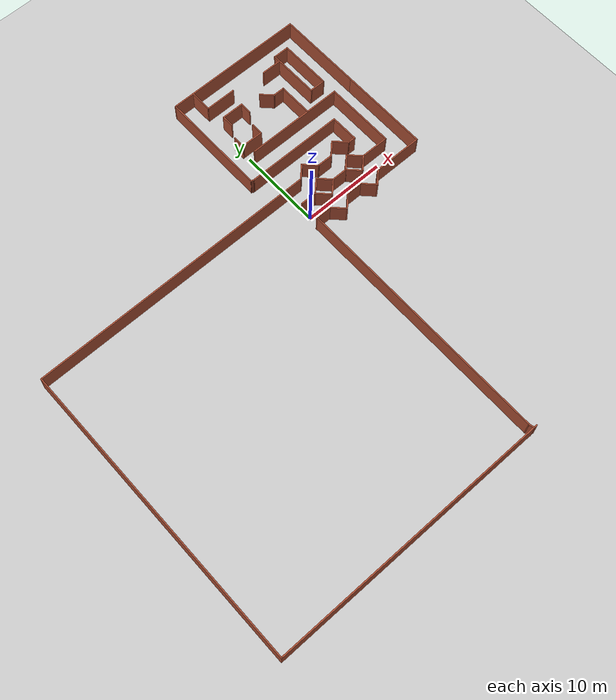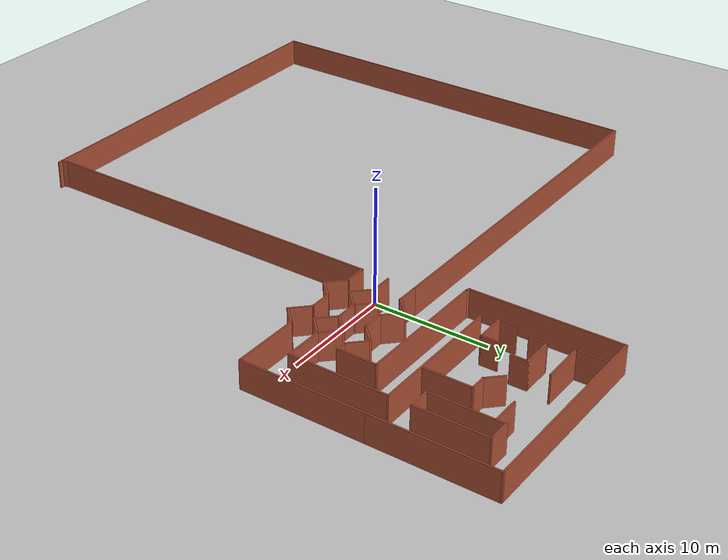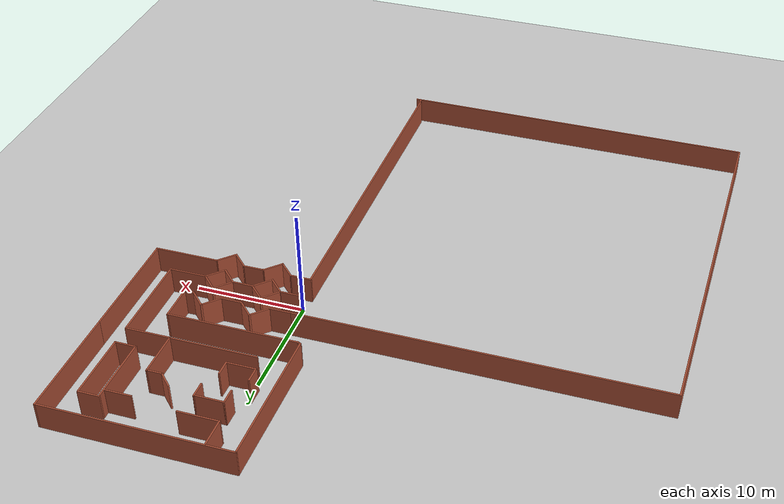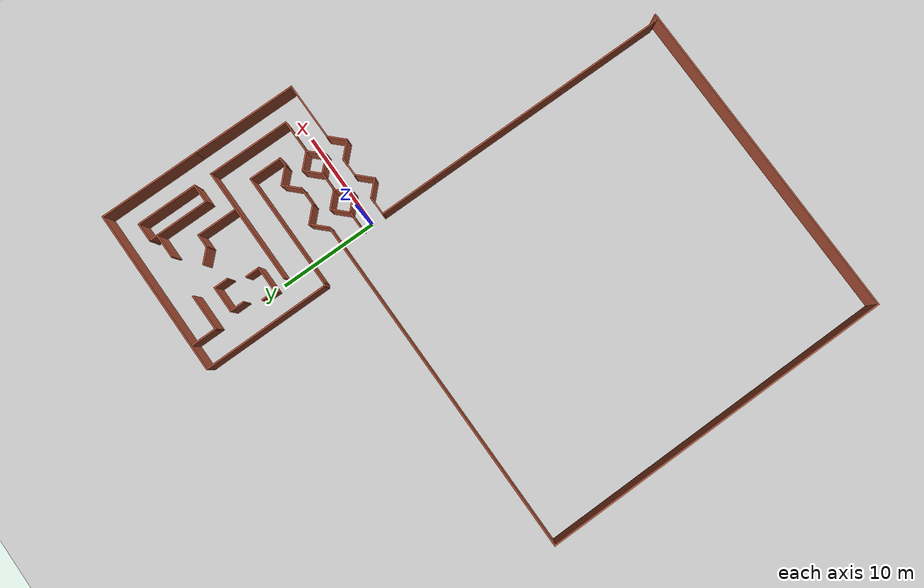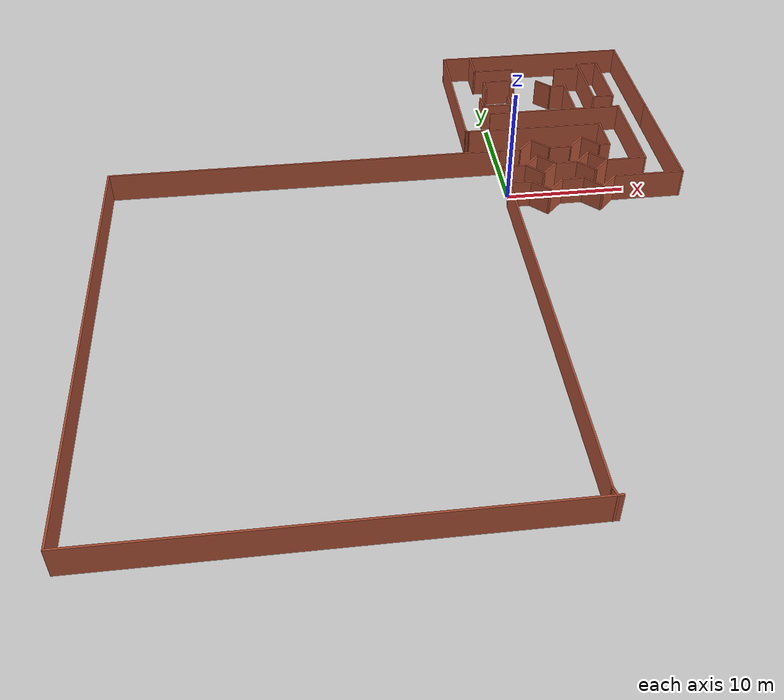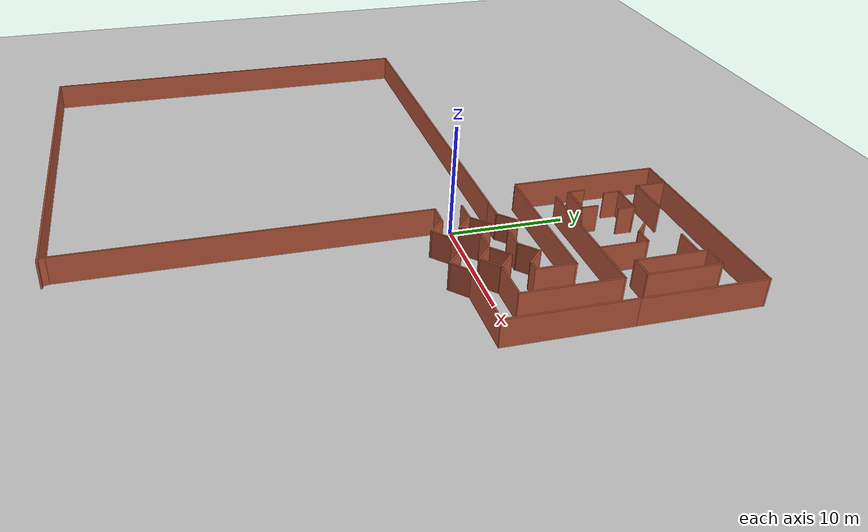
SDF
<sdf version="1.6">
 <world name="default">
  <light name="sun" type="directional">
   <pose>0 0 10 0 -0 0</pose>
   <diffuse>0.8 0.8 0.8 1</diffuse>
   <specular>0.2 0.2 0.2 1</specular>
   <attenuation>
    <range>1000</range>
    <constant>0.9</constant>
    <linear>0.01</linear>
    <quadratic>0.001</quadratic>
   </attenuation>
   <direction>-0.5 0.1 -0.9</direction>
  </light>
  <model name="ground_plane">
   <static>1</static>
   <link name="link">
    <collision name="collision">
     <geometry><plane><normal>0 0 1</normal><size>100 100</size></plane></geometry>
     <surface>
      <contact><collide_bitmask>65535</collide_bitmask></contact>
      <friction><ode><mu>100</mu><mu2>50</mu2></ode></friction>
     </surface>
    </collision>
    <visual name="visual">
     <cast_shadows>0</cast_shadows>
     <geometry><plane><normal>0 0 1</normal><size>100 100</size></plane></geometry>
     <material>
      <script><uri>file://media/materials/scripts/gazebo.material</uri><name>Gazebo/Grey</name></script>
     </material>
    </visual>
   </link>
  </model>
  <gravity>0 0 -9.8</gravity>
  <magnetic_field>6e-06 2.3e-05 -4.2e-05</magnetic_field>
  <atmosphere type="adiabatic"/>
  <physics name="default_physics" default="0" type="ode">
   <max_step_size>0.001</max_step_size>
   <real_time_factor>1</real_time_factor>
   <real_time_update_rate>1000</real_time_update_rate>
  </physics>
  <scene><ambient>0.4 0.4 0.4 1</ambient><background>0.7 0.7 0.7 1</background><shadows>1</shadows></scene>
  <audio><device>default</device></audio>
  <spherical_coordinates>
   <surface_model>EARTH_WGS84</surface_model>
   <latitude_deg>0</latitude_deg>
   <longitude_deg>0</longitude_deg>
   <elevation>0</elevation>
   <heading_deg>0</heading_deg>
  </spherical_coordinates>
  <model name="big_house">
   <pose>-9.42153 -6.74235 0 0 -0 0</pose>
   <link name="Wall_1">
    <collision name="Wall_1_Collision">
     <geometry><box><size>2 0.15 2.5</size></box></geometry>
     <pose>0 0 1.25 0 -0 0</pose>
    </collision>
    <visual name="Wall_1_Visual">
     <pose>0 0 1.25 0 -0 0</pose>
     <geometry><box><size>2 0.15 2.5</size></box></geometry>
     <material>
      <script><uri>file://media/materials/scripts/gazebo.material</uri><name>Gazebo/Bricks</name></script>
      <ambient>1 1 1 1</ambient>
     </material>
     <meta><layer>0</layer></meta>
    </visual>
    <pose>10.0837 7.72321 0 0 -0 0</pose>
   </link>
   <link name="Wall_11">
    <collision name="Wall_11_Collision">
     <geometry><box><size>2 0.15 2.5</size></box></geometry>
     <pose>0 0 1.25 0 -0 0</pose>
    </collision>
    <visual name="Wall_11_Visual">
     <pose>0 0 1.25 0 -0 0</pose>
     <geometry><box><size>2 0.15 2.5</size></box></geometry>
     <material>
      <script><uri>file://media/materials/scripts/gazebo.material</uri><name>Gazebo/Bricks</name></script>
      <ambient>1 1 1 1</ambient>
     </material>
     <meta><layer>0</layer></meta>
    </visual>
    <pose>14.55 5.37321 0 0 -0 0</pose>
   </link>
   <link name="Wall_13">
    <collision name="Wall_13_Collision">
     <geometry><box><size>2 0.15 2.5</size></box></geometry>
     <pose>0 0 1.25 0 -0 0</pose>
    </collision>
    <visual name="Wall_13_Visual">
     <pose>0 0 1.25 0 -0 0</pose>
     <geometry><box><size>2 0.15 2.5</size></box></geometry>
     <material>
      <script><uri>file://media/materials/scripts/gazebo.material</uri><name>Gazebo/Bricks</name></script>
      <ambient>1 1 1 1</ambient>
     </material>
     <meta><layer>0</layer></meta>
    </visual>
    <pose>14.55 7.72321 0 0 -0 0</pose>
   </link>
   <link name="Wall_14">
    <collision name="Wall_14_Collision">
     <geometry><box><size>2 0.15 2.5</size></box></geometry>
     <pose>0 0 1.25 0 -0 0</pose>
    </collision>
    <visual name="Wall_14_Visual">
     <pose>0 0 1.25 0 -0 0</pose>
     <geometry><box><size>2 0.15 2.5</size></box></geometry>
     <material>
      <script><uri>file://media/materials/scripts/gazebo.material</uri><name>Gazebo/Bricks</name></script>
      <ambient>1 1 1 1</ambient>
     </material>
     <meta><layer>0</layer></meta>
    </visual>
    <pose>16.1291 8.37728 0 0 -0 0.785398</pose>
   </link>
   <link name="Wall_15">
    <collision name="Wall_15_Collision">
     <geometry><box><size>2 0.15 2.5</size></box></geometry>
     <pose>0 0 1.25 0 -0 0</pose>
    </collision>
    <visual name="Wall_15_Visual">
     <pose>0 0 1.25 0 -0 0</pose>
     <geometry><box><size>2 0.15 2.5</size></box></geometry>
     <material>
      <script><uri>file://media/materials/scripts/gazebo.material</uri><name>Gazebo/Bricks</name></script>
      <ambient>1 1 1 1</ambient>
     </material>
     <meta><layer>0</layer></meta>
    </visual>
    <pose>17.4372 8.37728 0 0 -0 -0.785398</pose>
   </link>
   <link name="Wall_16">
    <collision name="Wall_16_Collision">
     <geometry><box><size>2 0.15 2.5</size></box></geometry>
     <pose>0 0 1.25 0 -0 0</pose>
    </collision>
    <visual name="Wall_16_Visual">
     <pose>0 0 1.25 0 -0 0</pose>
     <geometry><box><size>2 0.15 2.5</size></box></geometry>
     <material>
      <script><uri>file://media/materials/scripts/gazebo.material</uri><name>Gazebo/Bricks</name></script>
      <ambient>1 1 1 1</ambient>
     </material>
     <meta><layer>0</layer></meta>
    </visual>
    <pose>17.4372 7.06913 0 0 -0 -2.35619</pose>
   </link>
   <link name="Wall_17">
    <collision name="Wall_17_Collision">
     <geometry><box><size>2 0.15 2.5</size></box></geometry>
     <pose>0 0 1.25 0 -0 0</pose>
    </collision>
    <visual name="Wall_17_Visual">
     <pose>0 0 1.25 0 -0 0</pose>
     <geometry><box><size>2 0.15 2.5</size></box></geometry>
     <material>
      <script><uri>file://media/materials/scripts/gazebo.material</uri><name>Gazebo/Bricks</name></script>
      <ambient>1 1 1 1</ambient>
     </material>
     <meta><layer>0</layer></meta>
    </visual>
    <pose>16.1291 7.06913 0 0 -0 2.35619</pose>
   </link>
   <link name="Wall_19">
    <collision name="Wall_19_Collision">
     <geometry><box><size>2 0.15 2.5</size></box></geometry>
     <pose>0 0 1.25 0 -0 0</pose>
    </collision>
    <visual name="Wall_19_Visual">
     <pose>0 0 1.25 0 -0 0</pose>
     <geometry><box><size>2 0.15 2.5</size></box></geometry>
     <material>
      <script><uri>file://media/materials/scripts/gazebo.material</uri><name>Gazebo/Bricks</name></script>
      <ambient>1 1 1 1</ambient>
     </material>
     <meta><layer>0</layer></meta>
    </visual>
    <pose>16.1291 4.71913 0 0 -0 -0.785398</pose>
   </link>
   <link name="Wall_2">
    <collision name="Wall_2_Collision">
     <geometry><box><size>2 0.15 2.5</size></box></geometry>
     <pose>0 0 1.25 0 -0 0</pose>
    </collision>
    <visual name="Wall_2_Visual">
     <pose>0 0 1.25 0 -0 0</pose>
     <geometry><box><size>2 0.15 2.5</size></box></geometry>
     <material>
      <script><uri>file://media/materials/scripts/gazebo.material</uri><name>Gazebo/Bricks</name></script>
      <ambient>1 1 1 1</ambient>
     </material>
     <meta><layer>0</layer></meta>
    </visual>
    <pose>11.6628 7.06913 0 0 -0 -0.785398</pose>
   </link>
   <link name="Wall_20">
    <collision name="Wall_20_Collision">
     <geometry><box><size>2 0.15 2.5</size></box></geometry>
     <pose>0 0 1.25 0 -0 0</pose>
    </collision>
    <visual name="Wall_20_Visual">
     <pose>0 0 1.25 0 -0 0</pose>
     <geometry><box><size>2 0.15 2.5</size></box></geometry>
     <material>
      <script><uri>file://media/materials/scripts/gazebo.material</uri><name>Gazebo/Bricks</name></script>
      <ambient>1 1 1 1</ambient>
     </material>
     <meta><layer>0</layer></meta>
    </visual>
    <pose>17.4372 4.71913 0 0 -0 0.785398</pose>
   </link>
   <link name="Wall_24">
    <collision name="Wall_24_Collision">
     <geometry><box><size>2 0.15 2.5</size></box></geometry>
     <pose>0 0 1.25 0 -0 0</pose>
    </collision>
    <visual name="Wall_24_Visual">
     <pose>0 0 1.25 0 -0 0</pose>
     <geometry><box><size>2 0.15 2.5</size></box></geometry>
     <material>
      <script><uri>file://media/materials/scripts/gazebo.material</uri><name>Gazebo/Bricks</name></script>
      <ambient>1 1 1 1</ambient>
     </material>
     <meta><layer>0</layer></meta>
    </visual>
    <pose>10.0837 10.0732 0 0 -0 0</pose>
   </link>
   <link name="Wall_25">
    <collision name="Wall_25_Collision">
     <geometry><box><size>2 0.15 2.5</size></box></geometry>
     <pose>0 0 1.25 0 -0 0</pose>
    </collision>
    <visual name="Wall_25_Visual">
     <pose>0 0 1.25 0 -0 0</pose>
     <geometry><box><size>2 0.15 2.5</size></box></geometry>
     <material>
      <script><uri>file://media/materials/scripts/gazebo.material</uri><name>Gazebo/Bricks</name></script>
      <ambient>1 1 1 1</ambient>
     </material>
     <meta><layer>0</layer></meta>
    </visual>
    <pose>11.6628 10.7273 0 0 -0 0.785398</pose>
   </link>
   <link name="Wall_26">
    <collision name="Wall_26_Collision">
     <geometry><box><size>2 0.15 2.5</size></box></geometry>
     <pose>0 0 1.25 0 -0 0</pose>
    </collision>
    <visual name="Wall_26_Visual">
     <pose>0 0 1.25 0 -0 0</pose>
     <geometry><box><size>2 0.15 2.5</size></box></geometry>
     <material>
      <script><uri>file://media/materials/scripts/gazebo.material</uri><name>Gazebo/Bricks</name></script>
      <ambient>1 1 1 1</ambient>
     </material>
     <meta><layer>0</layer></meta>
    </visual>
    <pose>12.9709 10.7273 0 0 -0 -0.785398</pose>
   </link>
   <link name="Wall_27">
    <collision name="Wall_27_Collision">
     <geometry><box><size>2 0.15 2.5</size></box></geometry>
     <pose>0 0 1.25 0 -0 0</pose>
    </collision>
    <visual name="Wall_27_Visual">
     <pose>0 0 1.25 0 -0 0</pose>
     <geometry><box><size>2 0.15 2.5</size></box></geometry>
     <material>
      <script><uri>file://media/materials/scripts/gazebo.material</uri><name>Gazebo/Bricks</name></script>
      <ambient>1 1 1 1</ambient>
     </material>
     <meta><layer>0</layer></meta>
    </visual>
    <pose>14.55 10.0732 0 0 -0 0</pose>
   </link>
   <link name="Wall_28">
    <collision name="Wall_28_Collision">
     <geometry><box><size>2 0.15 2.5</size></box></geometry>
     <pose>0 0 1.25 0 -0 0</pose>
    </collision>
    <visual name="Wall_28_Visual">
     <pose>0 0 1.25 0 -0 0</pose>
     <geometry><box><size>2 0.15 2.5</size></box></geometry>
     <material>
      <script><uri>file://media/materials/scripts/gazebo.material</uri><name>Gazebo/Bricks</name></script>
      <ambient>1 1 1 1</ambient>
     </material>
     <meta><layer>0</layer></meta>
    </visual>
    <pose>16.1291 10.7273 0 0 -0 0.785398</pose>
   </link>
   <link name="Wall_29">
    <collision name="Wall_29_Collision">
     <geometry><box><size>2 0.15 2.5</size></box></geometry>
     <pose>0 0 1.25 0 -0 0</pose>
    </collision>
    <visual name="Wall_29_Visual">
     <pose>0 0 1.25 0 -0 0</pose>
     <geometry><box><size>2 0.15 2.5</size></box></geometry>
     <material>
      <script><uri>file://media/materials/scripts/gazebo.material</uri><name>Gazebo/Bricks</name></script>
      <ambient>1 1 1 1</ambient>
     </material>
     <meta><layer>0</layer></meta>
    </visual>
    <pose>17.4372 10.7273 0 0 -0 -0.785398</pose>
   </link>
   <link name="Wall_3">
    <collision name="Wall_3_Collision">
     <geometry><box><size>2 0.15 2.5</size></box></geometry>
     <pose>0 0 1.25 0 -0 0</pose>
    </collision>
    <visual name="Wall_3_Visual">
     <pose>0 0 1.25 0 -0 0</pose>
     <geometry><box><size>2 0.15 2.5</size></box></geometry>
     <material>
      <script><uri>file://media/materials/scripts/gazebo.material</uri><name>Gazebo/Bricks</name></script>
      <ambient>1 1 1 1</ambient>
     </material>
     <meta><layer>0</layer></meta>
    </visual>
    <pose>12.9709 7.06913 0 0 -0 0.785398</pose>
   </link>
   <link name="Wall_30">
    <collision name="Wall_30_Collision">
     <geometry><box><size>1 0.15 2.5</size></box></geometry>
     <pose>0 0 1.25 0 -0 0</pose>
    </collision>
    <visual name="Wall_30_Visual">
     <pose>0 0 1.25 0 -0 0</pose>
     <geometry><box><size>1 0.15 2.5</size></box></geometry>
     <material>
      <script><uri>file://media/materials/scripts/gazebo.material</uri><name>Gazebo/Bricks</name></script>
      <ambient>1 1 1 1</ambient>
     </material>
     <meta><layer>0</layer></meta>
    </visual>
    <pose>18.5163 10.0732 0 0 -0 0</pose>
   </link>
   <link name="Wall_31">
    <collision name="Wall_31_Collision">
     <geometry><box><size>3.43951 0.15 2.5</size></box></geometry>
     <pose>0 0 1.25 0 -0 0</pose>
    </collision>
    <visual name="Wall_31_Visual">
     <pose>0 0 1.25 0 -0 0</pose>
     <geometry><box><size>3.43951 0.15 2.5</size></box></geometry>
     <material>
      <script><uri>file://media/materials/scripts/gazebo.material</uri><name>Gazebo/Bricks</name></script>
      <ambient>1 1 1 1</ambient>
     </material>
     <meta><layer>0</layer></meta>
    </visual>
    <pose>18.9413 11.718 0 0 -0 1.5708</pose>
   </link>
   <link name="Wall_33">
    <collision name="Wall_33_Collision">
     <geometry><box><size>3.5 0.15 2.5</size></box></geometry>
     <pose>0 0 1.25 0 -0 0</pose>
    </collision>
    <visual name="Wall_33_Visual">
     <pose>0 0 1.25 0 -0 0</pose>
     <geometry><box><size>3.5 0.15 2.5</size></box></geometry>
     <material>
      <script><uri>file://media/materials/scripts/gazebo.material</uri><name>Gazebo/Bricks</name></script>
      <ambient>1 1 1 1</ambient>
     </material>
     <meta><layer>0</layer></meta>
    </visual>
    <pose>19.7663 7.72321 0 0 -0 0</pose>
   </link>
   <link name="Wall_35">
    <collision name="Wall_35_Collision">
     <geometry><box><size>6 0.15 2.5</size></box></geometry>
     <pose>0 0 1.25 0 -0 0</pose>
    </collision>
    <visual name="Wall_35_Visual">
     <pose>0 0 1.25 0 -0 0</pose>
     <geometry><box><size>6 0.15 2.5</size></box></geometry>
     <material>
      <script><uri>file://media/materials/scripts/gazebo.material</uri><name>Gazebo/Bricks</name></script>
      <ambient>1 1 1 1</ambient>
     </material>
     <meta><layer>0</layer></meta>
    </visual>
    <pose>21.0163 5.37321 0 0 -0 0</pose>
   </link>
   <link name="Wall_4">
    <collision name="Wall_4_Collision">
     <geometry><box><size>2 0.15 2.5</size></box></geometry>
     <pose>0 0 1.25 0 -0 0</pose>
    </collision>
    <visual name="Wall_4_Visual">
     <pose>0 0 1.25 0 -0 0</pose>
     <geometry><box><size>2 0.15 2.5</size></box></geometry>
     <material>
      <script><uri>file://media/materials/scripts/gazebo.material</uri><name>Gazebo/Bricks</name></script>
      <ambient>1 1 1 1</ambient>
     </material>
     <meta><layer>0</layer></meta>
    </visual>
    <pose>12.9709 8.37728 0 0 -0 2.35619</pose>
   </link>
   <link name="Wall_43">
    <collision name="Wall_43_Collision">
     <geometry><box><size>8.47026 0.15 2.5</size></box></geometry>
     <pose>0 0 1.25 0 -0 0</pose>
    </collision>
    <visual name="Wall_43_Visual">
     <pose>0 0 1.25 0 -0 0</pose>
     <geometry><box><size>8.47026 0.15 2.5</size></box></geometry>
     <material>
      <script><uri>file://media/materials/scripts/gazebo.material</uri><name>Gazebo/Bricks</name></script>
      <ambient>1 1 1 1</ambient>
     </material>
     <meta><layer>0</layer></meta>
    </visual>
    <pose>21.4413 11.8833 0 0 -0 1.5708</pose>
   </link>
   <link name="Wall_45">
    <collision name="Wall_45_Collision">
     <geometry><box><size>12 0.15 2.5</size></box></geometry>
     <pose>0 0 1.25 0 -0 0</pose>
    </collision>
    <visual name="Wall_45_Visual">
     <pose>0 0 1.25 0 -0 0</pose>
     <geometry><box><size>12 0.15 2.5</size></box></geometry>
     <material>
      <script><uri>file://media/materials/scripts/gazebo.material</uri><name>Gazebo/Bricks</name></script>
      <ambient>1 1 1 1</ambient>
     </material>
     <meta><layer>0</layer></meta>
    </visual>
    <pose>13.0163 13.3627 0 0 -0 3.14159</pose>
   </link>
   <link name="Wall_5">
    <collision name="Wall_5_Collision">
     <geometry><box><size>2 0.15 2.5</size></box></geometry>
     <pose>0 0 1.25 0 -0 0</pose>
    </collision>
    <visual name="Wall_5_Visual">
     <pose>0 0 1.25 0 -0 0</pose>
     <geometry><box><size>2 0.15 2.5</size></box></geometry>
     <material>
      <script><uri>file://media/materials/scripts/gazebo.material</uri><name>Gazebo/Bricks</name></script>
      <ambient>1 1 1 1</ambient>
     </material>
     <meta><layer>0</layer></meta>
    </visual>
    <pose>11.6628 8.37728 0 0 -0 -2.35619</pose>
   </link>
   <link name="Wall_50">
    <collision name="Wall_50_Collision">
     <geometry><box><size>10.75 0.15 2.5</size></box></geometry>
     <pose>0 0 1.25 0 -0 0</pose>
    </collision>
    <visual name="Wall_50_Visual">
     <pose>0 0 1.25 0 -0 0</pose>
     <geometry><box><size>10.75 0.15 2.5</size></box></geometry>
     <material>
      <script><uri>file://media/materials/scripts/gazebo.material</uri><name>Gazebo/Bricks</name></script>
      <ambient>1 1 1 1</ambient>
     </material>
     <meta><layer>0</layer></meta>
    </visual>
    <pose>23.9413 10.6732 0 0 -0 1.5708</pose>
   </link>
   <link name="Wall_52">
    <collision name="Wall_52_Collision">
     <geometry><box><size>10.5 0.15 2.5</size></box></geometry>
     <pose>0 0 1.25 0 -0 0</pose>
    </collision>
    <visual name="Wall_52_Visual">
     <pose>0 0 1.25 0 -0 0</pose>
     <geometry><box><size>10.5 0.15 2.5</size></box></geometry>
     <material>
      <script><uri>file://media/materials/scripts/gazebo.material</uri><name>Gazebo/Bricks</name></script>
      <ambient>1 1 1 1</ambient>
     </material>
     <meta><layer>0</layer></meta>
    </visual>
    <pose>23.9413 21.1482 0 0 -0 1.5708</pose>
   </link>
   <link name="Wall_58">
    <collision name="Wall_58_Collision">
     <geometry><box><size>17.25 0.15 2.5</size></box></geometry>
     <pose>0 0 1.25 0 -0 0</pose>
    </collision>
    <visual name="Wall_58_Visual">
     <pose>0 0 1.25 0 -0 0</pose>
     <geometry><box><size>17.25 0.15 2.5</size></box></geometry>
     <material>
      <script><uri>file://media/materials/scripts/gazebo.material</uri><name>Gazebo/Bricks</name></script>
      <ambient>1 1 1 1</ambient>
     </material>
     <meta><layer>0</layer></meta>
    </visual>
    <pose>15.3913 26.3232 0 0 -0 3.14159</pose>
   </link>
   <link name="Wall_59">
    <collision name="Wall_59_Collision">
     <geometry><box><size>13 0.15 2.5</size></box></geometry>
     <pose>0 0 1.25 0 -0 0</pose>
    </collision>
    <visual name="Wall_59_Visual">
     <pose>0 0 1.25 0 -0 0</pose>
     <geometry><box><size>13 0.15 2.5</size></box></geometry>
     <material>
      <script><uri>file://media/materials/scripts/gazebo.material</uri><name>Gazebo/Bricks</name></script>
      <ambient>1 1 1 1</ambient>
     </material>
     <meta><layer>0</layer></meta>
    </visual>
    <pose>6.84129 19.8982 0 0 -0 -1.5708</pose>
   </link>
   <link name="Wall_61">
    <collision name="Wall_61_Collision">
     <geometry><box><size>6.27974 0.15 2.5</size></box></geometry>
     <pose>0 0 1.25 0 -0 0</pose>
    </collision>
    <visual name="Wall_61_Visual">
     <pose>0 0 1.25 0 -0 0</pose>
     <geometry><box><size>6.27974 0.15 2.5</size></box></geometry>
     <material>
      <script><uri>file://media/materials/scripts/gazebo.material</uri><name>Gazebo/Bricks</name></script>
      <ambient>1 1 1 1</ambient>
     </material>
     <meta><layer>0</layer></meta>
    </visual>
    <pose>21.4413 20.9583 0 0 -0 1.5708</pose>
   </link>
   <link name="Wall_64">
    <collision name="Wall_64_Collision">
     <geometry><box><size>2 0.15 2.5</size></box></geometry>
     <pose>0 0 1.25 0 -0 0</pose>
    </collision>
    <visual name="Wall_64_Visual">
     <pose>0 0 1.25 0 -0 0</pose>
     <geometry><box><size>2 0.15 2.5</size></box></geometry>
     <material>
      <script><uri>file://media/materials/scripts/gazebo.material</uri><name>Gazebo/Bricks</name></script>
      <ambient>1 1 1 1</ambient>
     </material>
     <meta><layer>0</layer></meta>
    </visual>
    <pose>20.5163 17.8935 0 0 -0 3.14159</pose>
   </link>
   <link name="Wall_66">
    <collision name="Wall_66_Collision">
     <geometry><box><size>2 0.15 2.5</size></box></geometry>
     <pose>0 0 1.25 0 -0 0</pose>
    </collision>
    <visual name="Wall_66_Visual">
     <pose>0 0 1.25 0 -0 0</pose>
     <geometry><box><size>2 0.15 2.5</size></box></geometry>
     <material>
      <script><uri>file://media/materials/scripts/gazebo.material</uri><name>Gazebo/Bricks</name></script>
      <ambient>1 1 1 1</ambient>
     </material>
     <meta><layer>0</layer></meta>
    </visual>
    <pose>20.5163 24.0232 0 0 -0 3.14159</pose>
   </link>
   <link name="Wall_67">
    <collision name="Wall_67_Collision">
     <geometry><box><size>6.27974 0.15 2.5</size></box></geometry>
     <pose>0 0 1.25 0 -0 0</pose>
    </collision>
    <visual name="Wall_67_Visual">
     <pose>0 0 1.25 0 -0 0</pose>
     <geometry><box><size>6.27974 0.15 2.5</size></box></geometry>
     <material>
      <script><uri>file://media/materials/scripts/gazebo.material</uri><name>Gazebo/Bricks</name></script>
      <ambient>1 1 1 1</ambient>
     </material>
     <meta><layer>0</layer></meta>
    </visual>
    <pose>19.5913 20.9583 0 0 -0 -1.5708</pose>
   </link>
   <link name="Wall_69">
    <collision name="Wall_69_Collision">
     <geometry><box><size>12 0.15 2.5</size></box></geometry>
     <pose>0 0 1.25 0 -0 0</pose>
    </collision>
    <visual name="Wall_69_Visual">
     <pose>0 0 1.25 0 -0 0</pose>
     <geometry><box><size>12 0.15 2.5</size></box></geometry>
     <material>
      <script><uri>file://media/materials/scripts/gazebo.material</uri><name>Gazebo/Bricks</name></script>
      <ambient>1 1 1 1</ambient>
     </material>
     <meta><layer>0</layer></meta>
    </visual>
    <pose>15.5163 16.0435 0 0 -0 3.14159</pose>
   </link>
   <link name="Wall_7">
    <collision name="Wall_7_Collision">
     <geometry><box><size>2 0.15 2.5</size></box></geometry>
     <pose>0 0 1.25 0 -0 0</pose>
    </collision>
    <visual name="Wall_7_Visual">
     <pose>0 0 1.25 0 -0 0</pose>
     <geometry><box><size>2 0.15 2.5</size></box></geometry>
     <material>
      <script><uri>file://media/materials/scripts/gazebo.material</uri><name>Gazebo/Bricks</name></script>
      <ambient>1 1 1 1</ambient>
     </material>
     <meta><layer>0</layer></meta>
    </visual>
    <pose>10.0837 5.37321 0 0 -0 0</pose>
   </link>
   <link name="Wall_71">
    <collision name="Wall_71_Collision">
     <geometry><box><size>2.5 0.15 2.5</size></box></geometry>
     <pose>0 0 1.25 0 -0 0</pose>
    </collision>
    <visual name="Wall_71_Visual">
     <pose>0 0 1.25 0 -0 0</pose>
     <geometry><box><size>2.5 0.15 2.5</size></box></geometry>
     <material>
      <script><uri>file://media/materials/scripts/gazebo.material</uri><name>Gazebo/Bricks</name></script>
      <ambient>1 1 1 1</ambient>
     </material>
     <meta><layer>0</layer></meta>
    </visual>
    <pose>18.3839 23.2376 0 0 -0 3.14159</pose>
   </link>
   <link name="Wall_73">
    <collision name="Wall_73_Collision">
     <geometry><box><size>2.75 0.15 2.5</size></box></geometry>
     <pose>0 0 1.25 0 -0 0</pose>
    </collision>
    <visual name="Wall_73_Visual">
     <pose>0 0 1.25 0 -0 0</pose>
     <geometry><box><size>2.75 0.15 2.5</size></box></geometry>
     <material>
      <script><uri>file://media/materials/scripts/gazebo.material</uri><name>Gazebo/Bricks</name></script>
      <ambient>1 1 1 1</ambient>
     </material>
     <meta><layer>0</layer></meta>
    </visual>
    <pose>9.39111 24.9879 0 0 -0 -1.5708</pose>
   </link>
   <link name="Wall_74">
    <collision name="Wall_74_Collision">
     <geometry><box><size>3.75 0.15 2.5</size></box></geometry>
     <pose>0 0 1.25 0 -0 0</pose>
    </collision>
    <visual name="Wall_74_Visual">
     <pose>0 0 1.25 0 -0 0</pose>
     <geometry><box><size>3.75 0.15 2.5</size></box></geometry>
     <material>
      <script><uri>file://media/materials/scripts/gazebo.material</uri><name>Gazebo/Bricks</name></script>
      <ambient>1 1 1 1</ambient>
     </material>
     <meta><layer>0</layer></meta>
    </visual>
    <pose>11.1911 23.6879 0 0 -0 0</pose>
   </link>
   <link name="Wall_78">
    <collision name="Wall_78_Collision">
     <geometry><box><size>4.25 0.15 2.5</size></box></geometry>
     <pose>0 0 1.25 0 -0 0</pose>
    </collision>
    <visual name="Wall_78_Visual">
     <pose>0 0 1.25 0 -0 0</pose>
     <geometry><box><size>4.25 0.15 2.5</size></box></geometry>
     <material>
      <script><uri>file://media/materials/scripts/gazebo.material</uri><name>Gazebo/Bricks</name></script>
      <ambient>1 1 1 1</ambient>
     </material>
     <meta><layer>0</layer></meta>
    </visual>
    <pose>17.4057 18.1104 0 0 -0 1.5708</pose>
   </link>
   <link name="Wall_79">
    <collision name="Wall_79_Collision">
     <geometry><box><size>1.5 0.15 2.5</size></box></geometry>
     <pose>0 0 1.25 0 -0 0</pose>
    </collision>
    <visual name="Wall_79_Visual">
     <pose>0 0 1.25 0 -0 0</pose>
     <geometry><box><size>1.5 0.15 2.5</size></box></geometry>
     <material>
      <script><uri>file://media/materials/scripts/gazebo.material</uri><name>Gazebo/Bricks</name></script>
      <ambient>1 1 1 1</ambient>
     </material>
     <meta><layer>0</layer></meta>
    </visual>
    <pose>16.7307 20.1604 0 0 -0 3.14159</pose>
   </link>
   <link name="Wall_8">
    <collision name="Wall_8_Collision">
     <geometry><box><size>2 0.15 2.5</size></box></geometry>
     <pose>0 0 1.25 0 -0 0</pose>
    </collision>
    <visual name="Wall_8_Visual">
     <pose>0 0 1.25 0 -0 0</pose>
     <geometry><box><size>2 0.15 2.5</size></box></geometry>
     <material>
      <script><uri>file://media/materials/scripts/gazebo.material</uri><name>Gazebo/Bricks</name></script>
      <ambient>1 1 1 1</ambient>
     </material>
     <meta><layer>0</layer></meta>
    </visual>
    <pose>11.6628 4.71913 0 0 -0 -0.785398</pose>
   </link>
   <link name="Wall_80">
    <collision name="Wall_80_Collision">
     <geometry><box><size>1.75 0.15 2.5</size></box></geometry>
     <pose>0 0 1.25 0 -0 0</pose>
    </collision>
    <visual name="Wall_80_Visual">
     <pose>0 0 1.25 0 -0 0</pose>
     <geometry><box><size>1.75 0.15 2.5</size></box></geometry>
     <material>
      <script><uri>file://media/materials/scripts/gazebo.material</uri><name>Gazebo/Bricks</name></script>
      <ambient>1 1 1 1</ambient>
     </material>
     <meta><layer>0</layer></meta>
    </visual>
    <pose>15.49 20.7261 0 0 -0 2.35619</pose>
   </link>
   <link name="Wall_82">
    <collision name="Wall_82_Collision">
     <geometry><box><size>1.5 0.15 2.5</size></box></geometry>
     <pose>0 0 1.25 0 -0 0</pose>
    </collision>
    <visual name="Wall_82_Visual">
     <pose>0 0 1.25 0 -0 0</pose>
     <geometry><box><size>1.5 0.15 2.5</size></box></geometry>
     <material>
      <script><uri>file://media/materials/scripts/gazebo.material</uri><name>Gazebo/Bricks</name></script>
      <ambient>1 1 1 1</ambient>
     </material>
     <meta><layer>0</layer></meta>
    </visual>
    <pose>9.9294 20.9819 0 0 -0 1.5708</pose>
   </link>
   <link name="Wall_83">
    <collision name="Wall_83_Collision">
     <geometry><box><size>2.75 0.15 2.5</size></box></geometry>
     <pose>0 0 1.25 0 -0 0</pose>
    </collision>
    <visual name="Wall_83_Visual">
     <pose>0 0 1.25 0 -0 0</pose>
     <geometry><box><size>2.75 0.15 2.5</size></box></geometry>
     <material>
      <script><uri>file://media/materials/scripts/gazebo.material</uri><name>Gazebo/Bricks</name></script>
      <ambient>1 1 1 1</ambient>
     </material>
     <meta><layer>0</layer></meta>
    </visual>
    <pose>11.2294 21.6569 0 0 -0 0</pose>
   </link>
   <link name="Wall_84">
    <collision name="Wall_84_Collision">
     <geometry><box><size>1.5 0.15 2.5</size></box></geometry>
     <pose>0 0 1.25 0 -0 0</pose>
    </collision>
    <visual name="Wall_84_Visual">
     <pose>0 0 1.25 0 -0 0</pose>
     <geometry><box><size>1.5 0.15 2.5</size></box></geometry>
     <material>
      <script><uri>file://media/materials/scripts/gazebo.material</uri><name>Gazebo/Bricks</name></script>
      <ambient>1 1 1 1</ambient>
     </material>
     <meta><layer>0</layer></meta>
    </visual>
    <pose>12.5294 20.9819 0 0 -0 -1.5708</pose>
   </link>
   <link name="Wall_88">
    <collision name="Wall_88_Collision">
     <geometry><box><size>1.5 0.15 2.5</size></box></geometry>
     <pose>0 0 1.25 0 -0 0</pose>
    </collision>
    <visual name="Wall_88_Visual">
     <pose>0 0 1.25 0 -0 0</pose>
     <geometry><box><size>1.5 0.15 2.5</size></box></geometry>
     <material>
      <script><uri>file://media/materials/scripts/gazebo.material</uri><name>Gazebo/Bricks</name></script>
      <ambient>1 1 1 1</ambient>
     </material>
     <meta><layer>0</layer></meta>
    </visual>
    <pose>9.09206 18.0768 0 0 -0 -1.5708</pose>
   </link>
   <link name="Wall_89">
    <collision name="Wall_89_Collision">
     <geometry><box><size>2.75 0.15 2.5</size></box></geometry>
     <pose>0 0 1.25 0 -0 0</pose>
    </collision>
    <visual name="Wall_89_Visual">
     <pose>0 0 1.25 0 -0 0</pose>
     <geometry><box><size>2.75 0.15 2.5</size></box></geometry>
     <material>
      <script><uri>file://media/materials/scripts/gazebo.material</uri><name>Gazebo/Bricks</name></script>
      <ambient>1 1 1 1</ambient>
     </material>
     <meta><layer>0</layer></meta>
    </visual>
    <pose>10.3921 17.4018 0 0 -0 0</pose>
   </link>
   <link name="Wall_9">
    <collision name="Wall_9_Collision">
     <geometry><box><size>2 0.15 2.5</size></box></geometry>
     <pose>0 0 1.25 0 -0 0</pose>
    </collision>
    <visual name="Wall_9_Visual">
     <pose>0 0 1.25 0 -0 0</pose>
     <geometry><box><size>2 0.15 2.5</size></box></geometry>
     <material>
      <script><uri>file://media/materials/scripts/gazebo.material</uri><name>Gazebo/Bricks</name></script>
      <ambient>1 1 1 1</ambient>
     </material>
     <meta><layer>0</layer></meta>
    </visual>
    <pose>12.9709 4.71913 0 0 -0 0.785398</pose>
   </link>
   <link name="Wall_90">
    <collision name="Wall_90_Collision">
     <geometry><box><size>1.5 0.15 2.5</size></box></geometry>
     <pose>0 0 1.25 0 -0 0</pose>
    </collision>
    <visual name="Wall_90_Visual">
     <pose>0 0 1.25 0 -0 0</pose>
     <geometry><box><size>1.5 0.15 2.5</size></box></geometry>
     <material>
      <script><uri>file://media/materials/scripts/gazebo.material</uri><name>Gazebo/Bricks</name></script>
      <ambient>1 1 1 1</ambient>
     </material>
     <meta><layer>0</layer></meta>
    </visual>
    <pose>11.6921 18.0768 0 0 -0 1.5708</pose>
   </link>
   <link name="Wall_92">
    <collision name="Wall_92_Collision">
     <geometry><box><size>33.25 0.15 2.5</size></box></geometry>
     <pose>0 0 1.25 0 -0 0</pose>
    </collision>
    <visual name="Wall_92_Visual">
     <pose>0 0 1.25 0 -0 0</pose>
     <geometry><box><size>33.25 0.15 2.5</size></box></geometry>
     <material>
      <script><uri>file://media/materials/scripts/gazebo.material</uri><name>Gazebo/Bricks</name></script>
      <ambient>1 1 1 1</ambient>
     </material>
     <meta><layer>0</layer></meta>
    </visual>
    <pose>-7.39129 10.0732 0 0 -0 3.14159</pose>
   </link>
   <link name="Wall_93">
    <collision name="Wall_93_Collision">
     <geometry><box><size>36.5 0.15 2.5</size></box></geometry>
     <pose>0 0 1.25 0 -0 0</pose>
    </collision>
    <visual name="Wall_93_Visual">
     <pose>0 0 1.25 0 -0 0</pose>
     <geometry><box><size>36.5 0.15 2.5</size></box></geometry>
     <material>
      <script><uri>file://media/materials/scripts/gazebo.material</uri><name>Gazebo/Bricks</name></script>
      <ambient>1 1 1 1</ambient>
     </material>
     <meta><layer>0</layer></meta>
    </visual>
    <pose>-23.9413 -8.10179 0 0 -0 -1.5708</pose>
   </link>
   <link name="Wall_94">
    <collision name="Wall_94_Collision">
     <geometry><box><size>33.75 0.15 2.5</size></box></geometry>
     <pose>0 0 1.25 0 -0 0</pose>
    </collision>
    <visual name="Wall_94_Visual">
     <pose>0 0 1.25 0 -0 0</pose>
     <geometry><box><size>33.75 0.15 2.5</size></box></geometry>
     <material>
      <script><uri>file://media/materials/scripts/gazebo.material</uri><name>Gazebo/Bricks</name></script>
      <ambient>1 1 1 1</ambient>
     </material>
     <meta><layer>0</layer></meta>
    </visual>
    <pose>-7.14129 -26.2768 0 0 -0 0</pose>
   </link>
   <link name="Wall_96">
    <collision name="Wall_96_Collision">
     <geometry><box><size>31.25 0.15 2.5</size></box></geometry>
     <pose>0 0 1.25 0 -0 0</pose>
    </collision>
    <visual name="Wall_96_Visual">
     <pose>0 0 1.25 0 -0 0</pose>
     <geometry><box><size>31.25 0.15 2.5</size></box></geometry>
     <material>
      <script><uri>file://media/materials/scripts/gazebo.material</uri><name>Gazebo/Bricks</name></script>
      <ambient>1 1 1 1</ambient>
     </material>
     <meta><layer>0</layer></meta>
    </visual>
    <pose>9.1587 -10.1768 0 0 -0 -1.5708</pose>
   </link>
   <link name="Wall_97">
    <collision name="Wall_97_Collision">
     <geometry><box><size>0.75 0.15 2.5</size></box></geometry>
     <pose>0 0 1.25 0 -0 0</pose>
    </collision>
    <visual name="Wall_97_Visual">
     <pose>0 0 1.25 0 -0 0</pose>
     <geometry><box><size>0.75 0.15 2.5</size></box></geometry>
     <material>
      <script><uri>file://media/materials/scripts/gazebo.material</uri><name>Gazebo/Bricks</name></script>
      <ambient>1 1 1 1</ambient>
     </material>
     <meta><layer>0</layer></meta>
    </visual>
    <pose>9.23635 -26.0166 0 0 -0 -1.309</pose>
   </link>
   <link name="Wall_99">
    <collision name="Wall_99_Collision">
     <geometry><box><size>0.423328 0.15 2.5</size></box></geometry>
     <pose>0 0 1.25 0 -0 0</pose>
    </collision>
    <visual name="Wall_99_Visual">
     <pose>0 0 1.25 0 -0 0</pose>
     <geometry><box><size>0.423328 0.15 2.5</size></box></geometry>
     <material>
      <script><uri>file://media/materials/scripts/gazebo.material</uri><name>Gazebo/Bricks</name></script>
      <ambient>1 1 1 1</ambient>
     </material>
     <meta><layer>0</layer></meta>
    </visual>
    <pose>6.9663 13.418 0 0 -0 -0.416153</pose>
   </link>
   <static>1</static>
  </model>
 </world>
</sdf>
